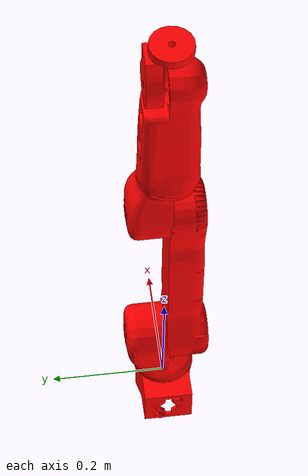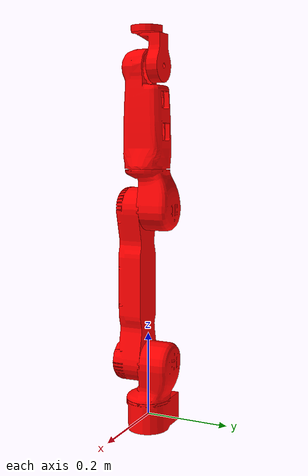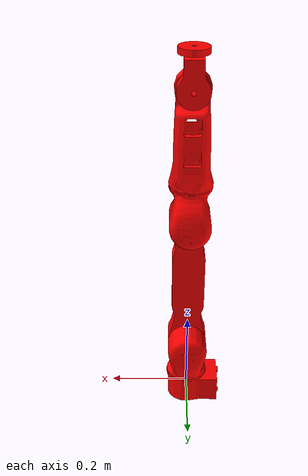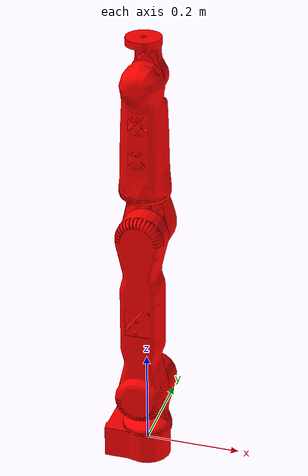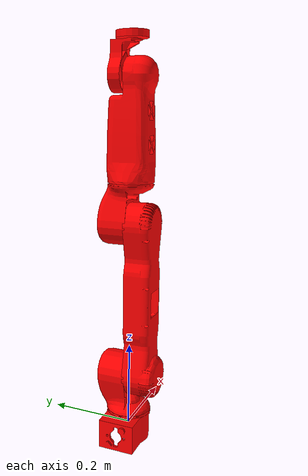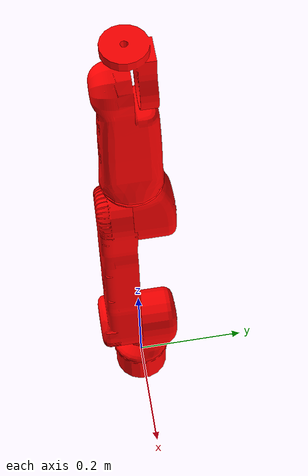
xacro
<?xml version="1.0"?>
<robot xmlns:xacro="http://ros.org/wiki/xacro">

<xacro:property name="mmTom" value="0.001" />
<xacro:property name="mm2Tom2" value="${0.001*0.001}" />
<xacro:property name="tonsToKg" value="1000.0" />

<xacro:property name="PI" value="3.14159265359" />
<xacro:property name="PI_2" value="1.57079632679" />

<xacro:property name="toRad" value="${PI/180.0}" />
<xacro:property name="toDeg" value="${180.0/PI}" />

<material name="grey">
  <color rgba="0.5 0.5 0.5 1"/>
</material>

<material name="red">
  <color rgba="1.0 0.0 0.0 1"/>
</material>

<!-- DYNAMICS PARAMETERS NEEDS TO BE CHEKED! -->

<link name ="_teleop_link0">
    <inertial>
      <origin xyz="0.0 0.0 0.0" rpy="0 0 0"/>
      <mass value="1.5"/>
      <inertia ixx="${1e+03*mm2Tom2}"  ixy="0.0"  ixz="0.0" iyy="${1e+03*mm2Tom2}" iyz="0.0" izz="${1e+03*mm2Tom2}" />
    </inertial>
    <visual>
      <origin xyz="0 0 0" rpy="${PI_2} 0 0"/>
      <geometry name="_teleop_link0_visual">
        <mesh filename="package://teleop_urdf/meshes/_teleop_link0.stl" scale="0.001 0.001 0.001" />
      </geometry>
      <material name="red"/>
    </visual>
    <collision>
      <origin xyz="0 0 0" rpy="${PI_2} 0 0"/>
      <geometry name="_teleop_link0_collision">
        <mesh filename="package://teleop_urdf/meshes/simple/_teleop_link0.stl" scale="0.001 0.001 0.001" />
      </geometry>
    </collision>
</link>

<link name ="_teleop_link1">
    <inertial>
      <origin xyz="0.0 ${-20.*mmTom} ${50.*mmTom}" rpy="0 0 0"/>
      <mass value="0.3"/>
      <inertia ixx="${1e+03*mm2Tom2}"  ixy="0.0"  ixz="0.0" iyy="${1e+03*mm2Tom2}" iyz="0.0" izz="${800*mm2Tom2}" />
    </inertial>
    <visual>
      <origin xyz="0 0 0" rpy="${PI_2} 0 ${-PI_2}"/>
      <geometry name="_teleop_link1_visual">
        <mesh filename="package://teleop_urdf/meshes/_teleop_link1.stl" scale="0.001 0.001 0.001" />
      </geometry>
      <material name="red"/>
    </visual>
    <collision>
      <origin xyz="0 0 0" rpy="${PI_2} 0 ${-PI_2}"/>
      <geometry name="_teleop_link1_collision">
        <mesh filename="package://teleop_urdf/meshes/simple/_teleop_link1.stl" scale="0.001 0.001 0.001" />
      </geometry>
    </collision>
</link>

<link name ="_teleop_link2">
    <inertial>
      <origin xyz="0.0 ${10*mmTom} ${180.*mmTom}" rpy="0 0 0"/>
      <mass value="3.3"/>
      <inertia ixx="${40e+03*mm2Tom2}"  ixy="0.0"  ixz="0.0" iyy="${40e+03*mm2Tom2}" iyz="0.0" izz="${10e3*mm2Tom2}" />
    </inertial>
    <visual>
      <origin xyz="0 0 0" rpy="${PI_2} 0 0"/>
      <geometry name="_teleop_link2_visual">
        <mesh filename="package://teleop_urdf/meshes/_teleop_link2.stl" scale="0.001 0.001 0.001" />
      </geometry>
      <material name="red"/>
    </visual>
    <collision>
      <origin xyz="0 0 0" rpy="${PI_2} 0 0"/>
      <geometry name="_teleop_link2_collision">
        <mesh filename="package://teleop_urdf/meshes/simple/_teleop_link2.stl" scale="0.001 0.001 0.001" />
      </geometry>
    </collision>
</link>

<link name ="_teleop_link3">
    <inertial>
      <origin xyz="0.0 ${-20*mmTom} ${50*mmTom}" rpy="0 0 0"/>
      <mass value="0.3"/>
      <inertia ixx="${1e+03*mm2Tom2}"  ixy="0.0"  ixz="0.0" iyy="${1e+03*mm2Tom2}" iyz="0.0" izz="${800*mm2Tom2}" />
    </inertial>
    <visual>
      <origin xyz="0 0 0" rpy="${PI_2} 0 0"/>
      <geometry name="_teleop_link3_visual">
        <mesh filename="package://teleop_urdf/meshes/_teleop_link3.stl" scale="0.001 0.001 0.001" />
      </geometry>
      <material name="red"/>
    </visual>
    <collision>
      <origin xyz="0 0 0" rpy="${PI_2} 0 0"/>
      <geometry name="_teleop_link3_collision">
        <mesh filename="package://teleop_urdf/meshes/simple/_teleop_link3.stl" scale="0.001 0.001 0.001" />
      </geometry>
    </collision>
</link>

<link name ="_teleop_link4">
    <inertial>
      <origin xyz="0.0 0.0 ${100*mmTom}" rpy="0 0 0"/>
      <mass value="2.5"/>
      <inertia ixx="${1.5e+04*mm2Tom2}"  ixy="0.0"  ixz="0.0" iyy="${1.5e+04*mm2Tom2}" iyz="0.0" izz="${8e3*mm2Tom2}" />
    </inertial>
    <visual>
      <origin xyz="0 0 0" rpy="${PI_2} 0 0"/>
      <geometry name="_teleop_link4_visual">
        <mesh filename="package://teleop_urdf/meshes/_teleop_link4.stl" scale="0.001 0.001 0.001" />
      </geometry>
      <material name="red"/>
    </visual>
    <collision>
      <origin xyz="0 0 0" rpy="${PI_2} 0 0"/>
      <geometry name="_teleop_link4_collision">
        <mesh filename="package://teleop_urdf/meshes/simple/_teleop_link4.stl" scale="0.001 0.001 0.001" />
      </geometry>
    </collision>
</link>

<link name ="_teleop_link5">
    <inertial>
      <origin xyz="0.0 0.0 ${150*mmTom}" rpy="0 0 0"/>
      <mass value="2"/>
      <inertia ixx="${1.e+04*mm2Tom2}"  ixy="0.0"  ixz="0.0" iyy="${1.e+04*mm2Tom2}" iyz="0.0" izz="${1.e4*mm2Tom2}" />
    </inertial>
    <visual>
      <origin xyz="0 0 0" rpy="${PI_2} 0 ${PI}"/>
      <geometry name="_teleop_link5_visual">
        <mesh filename="package://teleop_urdf/meshes/_teleop_link5.stl" scale="0.001 0.001 0.001" />
      </geometry>
      <material name="red"/>
    </visual>
    <collision>
      <origin xyz="0 0 0" rpy="${PI_2} 0 ${PI}"/>
      <geometry name="_teleop_link5_collision">
        <mesh filename="package://teleop_urdf/meshes/simple/_teleop_link5.stl" scale="0.001 0.001 0.001" />
      </geometry>
    </collision>
</link>

<joint name="joint1" type="revolute">
    <parent link="_teleop_link0"/>
    <child link="_teleop_link1"/>
    <origin xyz="0.0 0 0" rpy="0 0 0"/>
    <axis xyz="0 0 1"/>
    <limit velocity="11.7" effort="55" lower="-1.75" upper="1.75" />
    <dynamics friction="0" damping="0.03"/>
</joint>

<joint name="joint2" type="revolute">
    <parent link="_teleop_link1"/>
    <child link="_teleop_link2"/>
    <origin xyz="0 0 ${131.5*mmTom}" rpy="0 0 0"/>
    <axis xyz="0 1 0"/>
    <limit velocity="5.2" effort="147" lower="-2.15" upper="2.15" />
    <dynamics friction="0" damping="0.03"/>
</joint>

<joint name="joint3" type="revolute">
    <parent link="_teleop_link2"/>
    <child link="_teleop_link3"/>
    <origin xyz="0 0 ${365*mmTom}" rpy="0 0 0"/>
    <axis xyz="0 1 0"/>
    <limit velocity="8.1" effort="127" lower="-2.15" upper="2.15" />
    <dynamics friction="0" damping="0.03"/>
</joint>

<joint name="joint4" type="revolute">
    <parent link="_teleop_link3"/>
    <child link="_teleop_link4"/>
    <origin xyz="0 0 ${100*mmTom}" rpy="0 0 0"/>
    <axis xyz="0 0 1"/>
    <limit velocity="20.4" effort="28" lower="-2.79" upper="2.79" />
    <dynamics friction="0" damping="0.03"/>
</joint>

<joint name="joint5" type="revolute">
    <parent link="_teleop_link4"/>
    <child link="_teleop_link5"/>
    <origin xyz="0 0 ${226*mmTom}" rpy="0 0 0"/>
    <axis xyz="0 1 0"/>
    <limit velocity="20.4" effort="28" lower="-1.83" upper="1.83" />
    <dynamics friction="0" damping="0.03"/>
</joint>

</robot>
